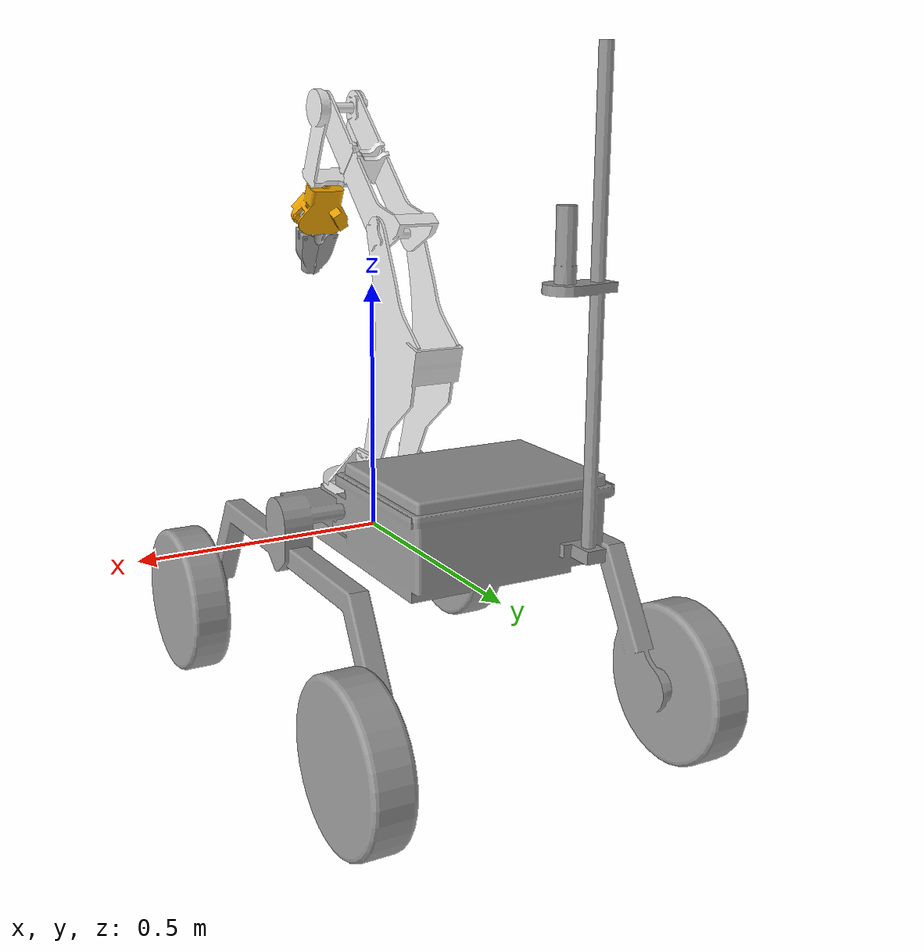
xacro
<?xml version="1.0" encoding="utf-8"?>
<robot xmlns:xacro="http://www.ros.org/wiki/xacro" name="polar">
  <xacro:arg name="robot_name" default="polar"/>

  <xacro:include filename="$(find polar_description)/robots/polar_arm.xacro"/>
  <xacro:include filename="$(find polar_description)/robots/hand.xacro"/>
  <xacro:include filename="$(find polar_description)/robots/polar.gazebo.xacro"/>
  <xacro:include filename="$(find polar_description)/robots/polar.transmission.xacro"/>

  <link name="world" />
  <xacro:polar_arm xyz="0 0 0" rpy="0 0 0" connected_to="world"/>
  <xacro:hand ns="polar" rpy="${pi/2} 0 0" xyz="-0.00675 -0.00964 -0.06152" connected_to="polar_link6"/>

  <xacro:polar_gazebo robot_name="$(arg robot_name)" />
  <xacro:polar_transmission robot_name="$(arg robot_name)" />
</robot>

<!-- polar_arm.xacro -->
<robot xmlns:xacro="http://www.ros.org/wiki/xacro" name="polar">
  <!-- safety_distance: Minimum safety distance in [m] by which the collision volumes are expanded and which is enforced during robot motions -->
  <!-- arm_id: Namespace of the polar arm. Serves to differentiate between arms in case of multiple instances. -->
  <xacro:macro name="polar_arm" params="arm_id:='polar' description_pkg:='polar_description' connected_to:='' xyz:='0 0 0' rpy:='0 0 0'">
    <xacro:unless value="${not connected_to}">
      <joint name="virtual_joint" type="fixed">
        <parent link="${connected_to}"/> <!-- world -->
        <child link="${arm_id}_link0"/> <!-- base link -->
        <origin rpy="${rpy}" xyz="${xyz}"/>
      </joint>
    </xacro:unless>

    <xacro:property name="joint_damping" value="0.0"/>
    <xacro:property name="joint_friction" value="0.0"/>
    <xacro:property name="safety_k_position" value="20.0"/>
    <xacro:property name="safety_k_velocity" value="0.0"/>
    <xacro:property name="safety_pos_margin" value="0.0"/>

    <link name="${arm_id}_link0">
      <visual>
        <origin rpy="0 0 0" xyz="0 0 0"/>
        <geometry>
          <mesh filename="package://${description_pkg}/meshes/link0.dae"/>
        </geometry>
      </visual>
      <collision>
        <origin rpy="0 0 0" xyz="0 0 0"/>
        <geometry>
          <mesh filename="package://${description_pkg}/meshes/link0.dae"/>
        </geometry>
      </collision>
      <inertial>
        <origin rpy="0 0 0" xyz="-0.0003 -0.0 0.0620"/>
        <mass value="4.6096"/>
        <inertia ixx="0.0098" ixy="0.0" ixz="-0.0" iyy="0.0064" iyz="0.0" izz="0.0145"/>
      </inertial>
    </link>

    <link name="${arm_id}_link1">
      <visual>
        <origin rpy="0 0 0" xyz="0.0005 0.0 -0.095"/>
        <geometry>
          <mesh filename="package://${description_pkg}/meshes/link1.dae"/>
        </geometry>
      </visual>
      <collision>
        <origin rpy="0 0 0" xyz="0.0005 0.0 -0.095"/>
        <geometry>
          <mesh filename="package://${description_pkg}/meshes/link1.dae"/>
        </geometry>
      </collision>
      <inertial>
        <origin rpy="0 0 0" xyz="-0.0003 0.0414 0.0140"/>
        <mass value="5.6966"/>
        <inertia ixx="0.0205" ixy="-0.0" ixz="-0.0001" iyy="0.0259" iyz="-0.0012" izz="0.0429"/>
      </inertial>
    </link>
    <joint name="${arm_id}_joint1" type="revolute">
      <safety_controller k_position="${safety_k_position}" k_velocity="${safety_k_velocity}" soft_lower_limit="${-1.2*pi + safety_pos_margin}" soft_upper_limit="${1.2*pi - safety_pos_margin}"/>
      <origin rpy="0 0 0" xyz="-0.0005 0.0 0.095"/>
      <parent link="${arm_id}_link0"/>
      <child link="${arm_id}_link1"/>
      <axis xyz="-0.0048 0.0 1.0"/>
      <limit effort="100" lower="${-1.2*pi}" upper="${1.2*pi}" velocity="0.1286"/>
      <dynamics damping="${joint_damping}" friction="${joint_friction}"/>
    </joint>

    <link name="${arm_id}_link2">
      <visual>
        <origin rpy="0 0 0" xyz="0.0001 -0.064 -0.144"/>
        <geometry>
          <mesh filename="package://${description_pkg}/meshes/link2.dae"/>
        </geometry>
      </visual>
      <collision>
        <origin rpy="0 0 0" xyz="0.0001 -0.064 -0.144"/>
        <geometry>
          <mesh filename="package://${description_pkg}/meshes/link2.dae"/>
        </geometry>
      </collision>
      <inertial>
        <origin rpy="0 0 0" xyz="-0.0011 -0.0102 0.2446"/>
        <mass value="6.3034"/>
        <inertia ixx="0.1301" ixy="-0.0" ixz="0.0003" iyy="0.1119" iyz="0.0241" izz="0.0384"/>
      </inertial>
    </link>
    <joint name="${arm_id}_joint2" type="revolute">
      <safety_controller k_position="${safety_k_position}" k_velocity="${safety_k_velocity}" soft_lower_limit="${-1.2968 + safety_pos_margin}" soft_upper_limit="${0 - safety_pos_margin}"/>
      <origin rpy="-0.3813 0 0" xyz="-0.0005 0.064 0.049"/>
      <parent link="${arm_id}_link1"/>
      <child link="${arm_id}_link2"/>
      <axis xyz="-1.0 -0.0048 -0.0048"/>
      <limit effort="100" lower="-1.2968" upper="0" velocity="0.1071"/>
      <dynamics damping="${joint_damping}" friction="${joint_friction}"/>
    </joint>

    <link name="${arm_id}_link3">
      <visual>
        <origin rpy="0 0 0" xyz="0.0024 0.0797 -0.5865"/>
        <geometry>
          <mesh filename="package://${description_pkg}/meshes/link3.dae"/>
        </geometry>
      </visual>
      <collision>
        <origin rpy="0 0 0" xyz="0.0024 0.0797 -0.5865"/>
        <geometry>
          <mesh filename="package://${description_pkg}/meshes/link3.dae"/>
        </geometry>
      </collision>
      <inertial>
        <origin rpy="0 0 0" xyz="0.0002 -0.0607 0.0127"/>
        <mass value="2.4044"/>
        <inertia ixx="0.0165" ixy="0.0" ixz="0.0" iyy="0.0044" iyz="-0.0028" izz="0.0164"/>
      </inertial>
    </link>
    <joint name="${arm_id}_joint3" type="revolute">
      <safety_controller k_position="${safety_k_position}" k_velocity="${safety_k_velocity}" soft_lower_limit="${0 + safety_pos_margin}" soft_upper_limit="${1.1537 - safety_pos_margin}"/>
      <origin rpy="-0.3951 0 0" xyz="-0.0014 -0.1437 0.4425"/>
      <parent link="${arm_id}_link2"/>
      <child link="${arm_id}_link3"/>
      <axis xyz="1.0 0.0048 0.0048"/>
      <limit effort="100" lower="0" upper="1.1537" velocity="0.0637"/>
      <dynamics damping="${joint_damping}" friction="${joint_friction}"/>
    </joint>

    <link name="${arm_id}_link4">
      <visual>
        <origin rpy="0 0 0" xyz="0.0016 0.2627 -0.5865"/>
        <geometry>
          <mesh filename="package://${description_pkg}/meshes/link4.dae"/>
        </geometry>
      </visual>
      <collision>
        <origin rpy="0 0 0" xyz="0.0016 0.2627 -0.5865"/>
        <geometry>
          <mesh filename="package://${description_pkg}/meshes/link4.dae"/>
        </geometry>
      </collision>
      <inertial>
        <origin rpy="0 0 0" xyz="0.0004 -0.0779 0.0"/>
        <mass value="1.4724"/>
        <inertia ixx="0.0052" ixy="0.0" ixz="-0.0" iyy="0.0019" iyz="0.0" izz="0.0059"/>
      </inertial>
    </link>
    <joint name="${arm_id}_joint4" type="revolute">
      <safety_controller k_position="${safety_k_position}" k_velocity="${safety_k_velocity}" soft_lower_limit="${-pi + safety_pos_margin}" soft_upper_limit="${pi - safety_pos_margin}"/>
      <origin rpy="0 0 0" xyz="0.0009 -0.1830 0.0"/>
      <parent link="${arm_id}_link3"/>
      <child link="${arm_id}_link4"/>
      <axis xyz="0.0048 -1.0 0.0"/>
      <limit effort="100" lower="${-pi}" upper="${pi}" velocity="0.8722"/>
      <dynamics damping="${joint_damping}" friction="${joint_friction}"/>
    </joint>

    <link name="${arm_id}_link5">
      <visual>
        <origin rpy="0 0 0" xyz="0.0008 0.4142 -0.5865"/>
        <geometry>
          <mesh filename="package://${description_pkg}/meshes/link5.dae"/>
        </geometry>
      </visual>
      <collision>
        <origin rpy="0 0 0" xyz="0.0008 0.4142 -0.5865"/>
        <geometry>
          <mesh filename="package://${description_pkg}/meshes/link5.dae"/>
        </geometry>
      </collision>
      <inertial>
        <origin rpy="0 0 0" xyz="0.0115 0.0 -0.0568"/>
        <mass value="2.2547"/>
        <inertia ixx="0.0109" ixy="-0.0" ixz="-0.0014" iyy="0.0136" iyz="-0.0" izz="0.0040"/>
      </inertial>
    </link>
    <joint name="${arm_id}_joint5" type="revolute">
      <safety_controller k_position="${safety_k_position}" k_velocity="${safety_k_velocity}" soft_lower_limit="${-3.6530 + safety_pos_margin}" soft_upper_limit="${0 - safety_pos_margin}"/>
      <origin rpy="0.3333 0 0" xyz="0.0007 -0.1515 0.0"/> <!-- -1 derece -->
      <parent link="${arm_id}_link4"/>
      <child link="${arm_id}_link5"/>
      <axis xyz="1.0 0.0048 0.0048"/>
      <limit effort="100" lower="-3.6530" upper="0" velocity="0.1626"/> <!-- lower +1 derece -->
      <dynamics damping="${joint_damping}" friction="${joint_friction}"/>
    </joint>

    <link name="${arm_id}_link6">
      <visual>
        <origin rpy="0 0 0" xyz="0.0 0.4142 -0.4235"/>
        <geometry>
          <mesh filename="package://${description_pkg}/meshes/link6.dae"/>
        </geometry>
      </visual>
      <collision>
        <origin rpy="0 0 0" xyz="0.0 0.4142 -0.4235"/>
        <geometry>
          <mesh filename="package://${description_pkg}/meshes/link6.dae"/>
        </geometry>
      </collision>
      <inertial>
        <origin rpy="0 0 0" xyz="0.0 0.0 -0.005"/>
        <mass value="0.0254"/>
        <inertia ixx="0.0" ixy="-0.0" ixz="-0.0" iyy="0.0" iyz="0.0" izz="0.0"/>
      </inertial>
    </link>
    <joint name="${arm_id}_joint6" type="revolute">
      <safety_controller k_position="${safety_k_position}" k_velocity="${safety_k_velocity}" soft_lower_limit="${-pi + safety_pos_margin}" soft_upper_limit="${pi - safety_pos_margin}"/>
      <origin rpy="0 0 0" xyz="0.0008 -0.0 -0.1630"/>
      <parent link="${arm_id}_link5"/>
      <child link="${arm_id}_link6"/>
      <axis xyz="0.0048 -0.0 -1.0"/>
      <limit effort="100" lower="${-pi}" upper="${pi}" velocity="0.8845"/>
      <dynamics damping="${joint_damping}" friction="${joint_friction}"/>
    </joint>

  </xacro:macro>
</robot>

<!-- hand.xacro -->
<robot xmlns:xacro="http://www.ros.org/wiki/xacro" name="hand">
  <!-- safety_distance: Minimum safety distance in [m] by which the collision volumes are expanded and which is enforced during robot motions -->
  <xacro:macro name="hand" params="connected_to:='' ns:='' rpy:='0 0 0' xyz:='0 0 0'">
    <xacro:unless value="${connected_to == ''}">
      <joint name="${ns}_hand_joint" type="fixed">
        <parent link="${connected_to}"/>
        <child link="${ns}_hand"/>
        <origin xyz="${xyz}" rpy="${rpy}"/>
      </joint>
    </xacro:unless>

    <xacro:property name="limit" value="${60 * pi / 180}"/>

    <link name="${ns}_hand">
      <visual>
        <origin rpy="0 0 0" xyz="0 0 0"/>
        <geometry>
          <mesh filename="package://polar_description/meshes/gripper/hand.dae"/>
        </geometry>
      </visual>
      <collision>
        <origin rpy="0 0 0" xyz="0 0 0"/>
        <geometry>
          <mesh filename="package://polar_description/meshes/gripper/hand.dae"/>
        </geometry>
      </collision>
      <inertial>
        <origin rpy="0 0 0" xyz="0.006733 -0.006163 -0.009538"/>
        <mass value="2.3427"/>
        <inertia ixx="0.0028" ixy="0" ixz="-0.0004" iyy="0.0023" iyz="0" izz="0.0035"/>
      </inertial>
    </link>

    <link name="${ns}_outer_l">
      <visual>
        <origin rpy="0 0 0" xyz="-0.040231 0.024653 0.007426"/>
        <geometry>
          <mesh filename="package://polar_description/meshes/gripper/outer_l.dae"/>
        </geometry>
      </visual>
      <collision>
        <origin rpy="0 0 0" xyz="-0.040231 0.024653 0.007426"/>
        <geometry>
          <mesh filename="package://polar_description/meshes/gripper/outer_l.dae"/>
        </geometry>
      </collision>
      <inertial>
        <origin rpy="0 0 0" xyz="0 -0.013601 -0.0020100"/>
        <mass value="0.0589"/>
        <inertia ixx="0" ixy="-0.0" ixz="0.0" iyy="0" iyz="0.0" izz="0"/>
      </inertial>
    </link>

    <link name="${ns}_outer_r">
      <visual>
        <origin rpy="0 0 0" xyz="0.026768 0.024652 0.011626"/>
        <geometry>
          <mesh filename="package://polar_description/meshes/gripper/outer_r.dae"/>
        </geometry>
      </visual>
      <collision>
        <origin rpy="0 0 0" xyz="0.026768 0.024652 0.011626"/>
        <geometry>
          <mesh filename="package://polar_description/meshes/gripper/outer_r.dae"/>
        </geometry>
      </collision>
      <inertial>
        <origin rpy="0 0 0" xyz="0 -0.013627 0.002093"/>
        <mass value="0.058776"/>
        <inertia ixx="0" ixy="-0.0" ixz="-0.0" iyy="0" iyz="0.0" izz="0"/>
      </inertial>
    </link>

    <link name="${ns}_finger_l">
      <visual>
        <origin rpy="0 0 0" xyz="-0.040231 0.069653 0.013526"/>
        <geometry>
          <mesh filename="package://polar_description/meshes/gripper/finger_l.dae"/>
        </geometry>
      </visual>
      <collision>
        <origin rpy="0 0 0" xyz="-0.040231 0.069653 0.013526"/>
        <geometry>
          <mesh filename="package://polar_description/meshes/gripper/finger_l.dae"/>
        </geometry>
      </collision>
      <inertial>
        <origin rpy="0 0 0" xyz="-0.010571 -0.034963 0.004031"/>
        <mass value="0.5436"/>
        <inertia ixx="0.0004" ixy="0" ixz="-0.0" iyy="0.0001" iyz="0" izz="0.0004"/>
      </inertial>
    </link>

    <link name="${ns}_finger_r">
      <visual>
        <origin rpy="0 0 0" xyz="0.026768 0.069652 0.013526"/>
        <geometry>
          <mesh filename="package://polar_description/meshes/gripper/finger_r.dae"/>
        </geometry>
      </visual>
      <collision>
        <origin rpy="0 0 0" xyz="0.026768 0.069652 0.013526"/>
        <geometry>
          <mesh filename="package://polar_description/meshes/gripper/finger_r.dae"/>
        </geometry>
      </collision>
      <inertial>
        <origin rpy="0 0 0" xyz="0.010571 -0.034962 0.003969"/>
        <mass value="0.5436"/>
        <inertia ixx="0.0004" ixy="0" ixz="-0.0" iyy="0.0001" iyz="0" izz="0.0004"/>
      </inertial>
    </link>

    <joint name="${ns}_hand_joint2" type="revolute">
      <origin rpy="0 0 0" xyz="-0.026768 -0.024652 -0.011626"/>
      <parent link="${ns}_hand"/>
      <child link="${ns}_outer_r"/>
      <axis xyz="-0.0 0.0 1.0"/>
      <mimic joint="${ns}_hand_joint1" multiplier="1.0"/>
      <limit effort="100" lower="${-limit}" upper="0" velocity="6.5449"/>
    </joint>

    <joint name="${ns}_hand_joint1" type="revolute">
      <origin rpy="0 0 0" xyz="0.040231 -0.024653 -0.007426"/>
      <parent link="${ns}_hand"/>
      <child link="${ns}_outer_l"/>
      <axis xyz="0.0 -0.0 -1.0"/>
      <limit effort="100" lower="${-limit}" upper="0" velocity="6.5449"/>
    </joint>

    <joint name="${ns}_finger_joint1" type="revolute">
      <origin rpy="0 0 0" xyz="0.0 -0.045 -0.0061"/>
      <parent link="${ns}_outer_l"/>
      <child link="${ns}_finger_l"/>
      <axis xyz="0.0 -0.0 -1.0"/>
      <mimic joint="${ns}_hand_joint1" multiplier="-1.0"/>
      <limit effort="100" lower="0" upper="${limit}" velocity="6.5449"/>
    </joint>

    <joint name="${ns}_finger_joint2" type="revolute">
      <origin rpy="0 0 0" xyz="0.0 -0.045 -0.0019"/>
      <parent link="${ns}_outer_r"/>
      <child link="${ns}_finger_r"/>
      <axis xyz="0.0 -0.0 -1.0"/>
      <mimic joint="${ns}_hand_joint1" multiplier="1.0"/>
      <limit effort="100" lower="${-limit}" upper="0" velocity="6.5449"/>
    </joint>
  </xacro:macro>
</robot>
